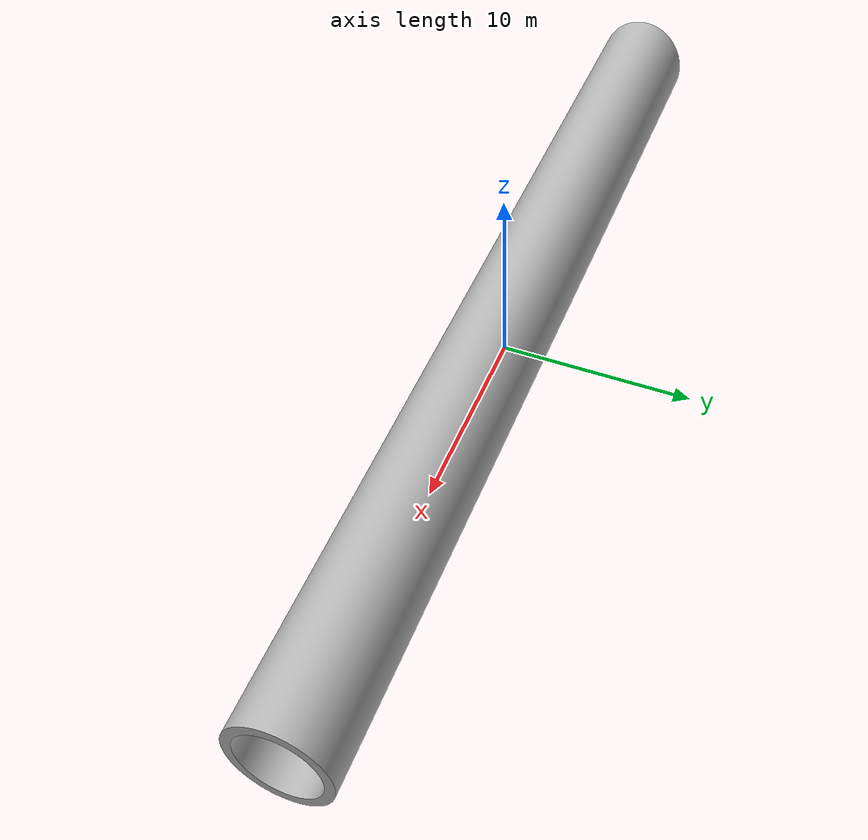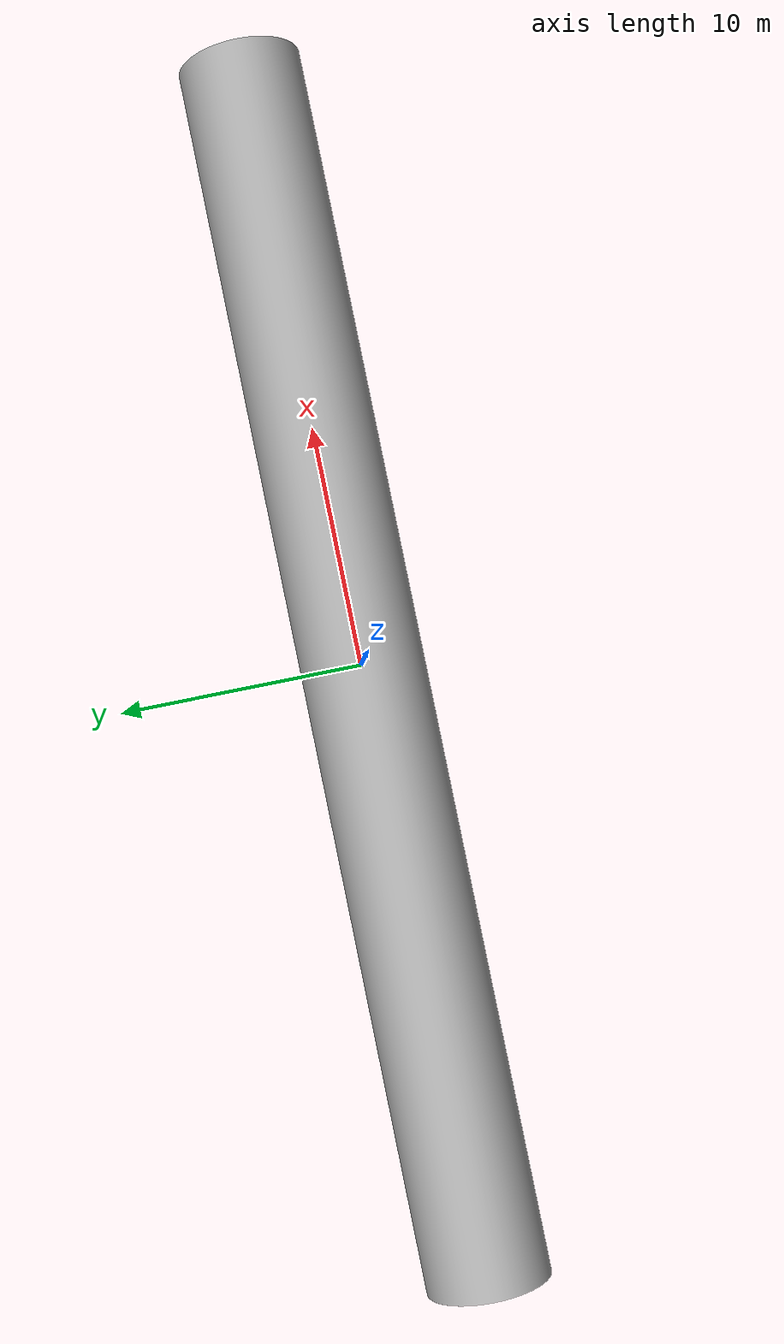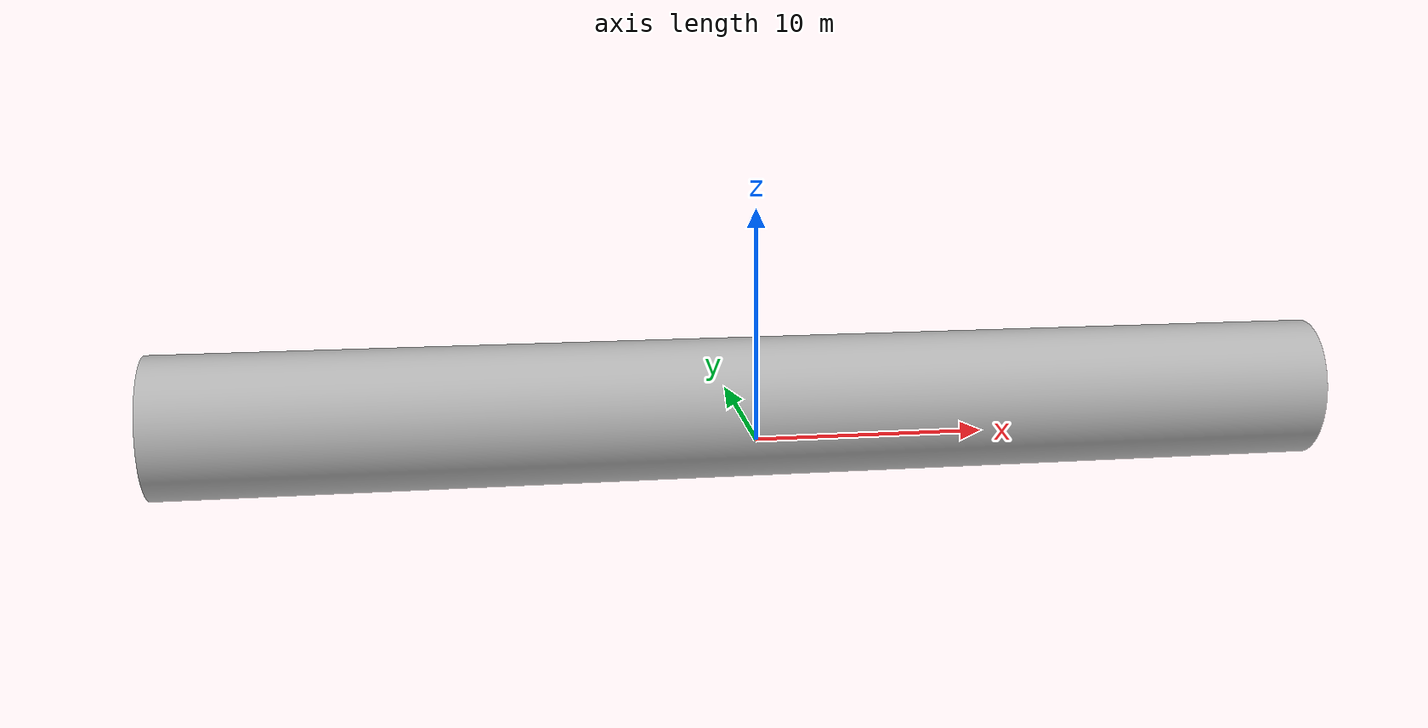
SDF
<?xml version="1.0"?>
<sdf version="1.4">

    <model name="tunnel7">
      <pose>0 0 0  0 0 0</pose>
      <static>true</static>
      <link name="body">

        <inertial>
             <mass>500</mass>
             <inertia>
               <ixx>0.001087473</ixx>
               <iyy>0.001087473</iyy>
               <izz>0.001092437</izz>
               <ixy>0</ixy>
               <ixz>0</ixz>
               <iyz>0</iyz>
             </inertia>
           </inertial>

        <visual name="visual">
          <geometry>
            <mesh><uri>model://tunnel7/meshes/tunnel_brick7.dae</uri></mesh>
          </geometry>
        </visual>

        <collision name="collision">
          <geometry>
            <mesh><uri>model://tunnel7/meshes/tunnel_brick7.dae</uri></mesh>
          </geometry>
        </collision>

    </link>
  </model>

</sdf>
